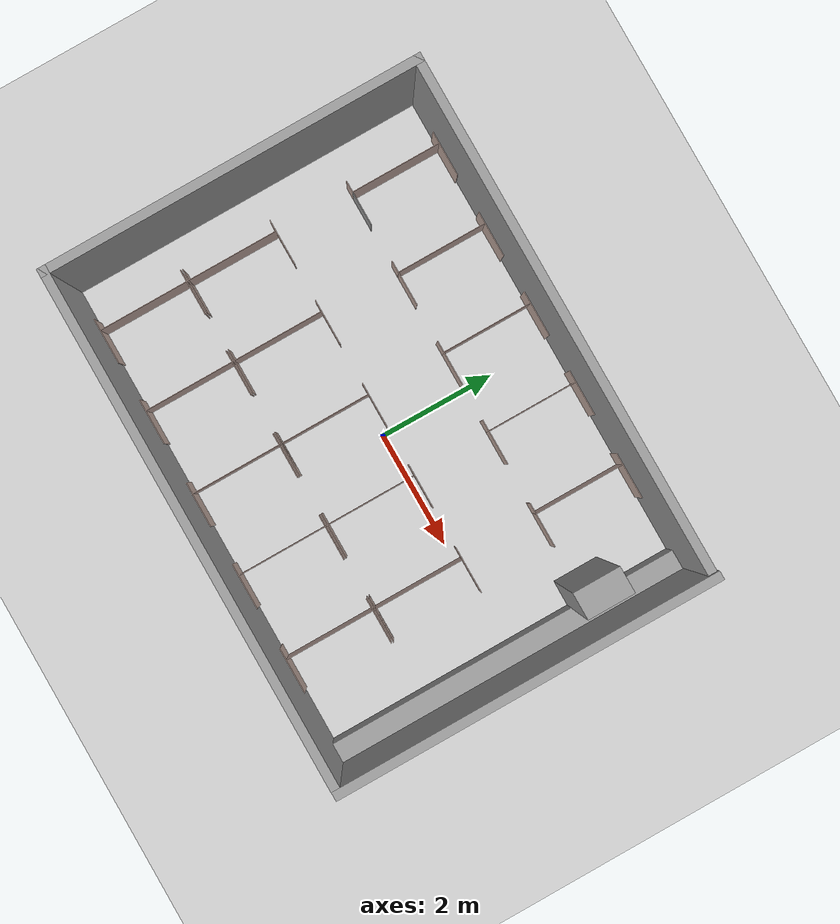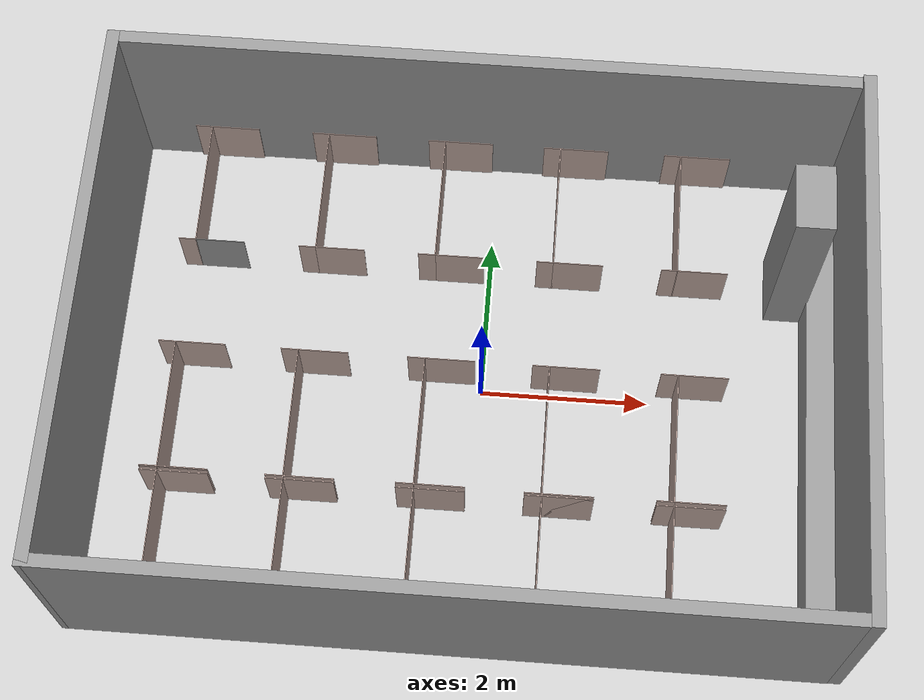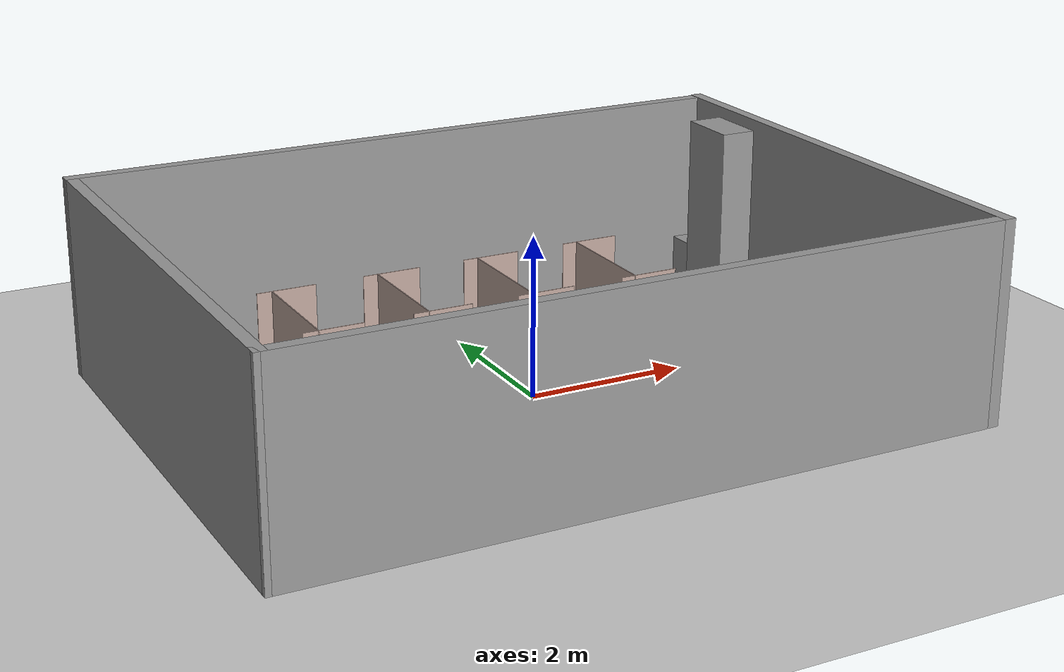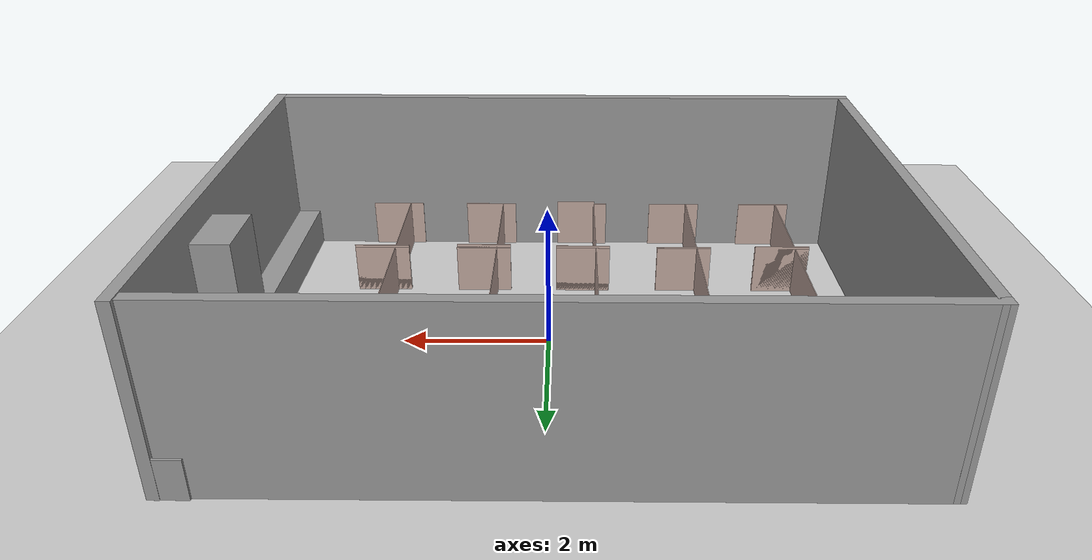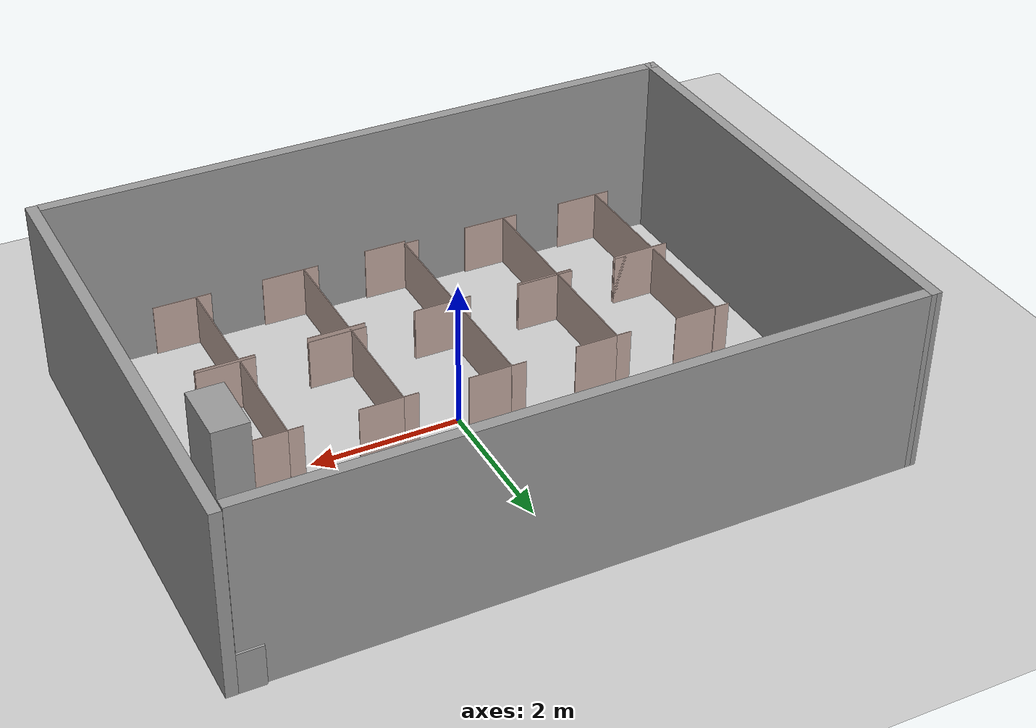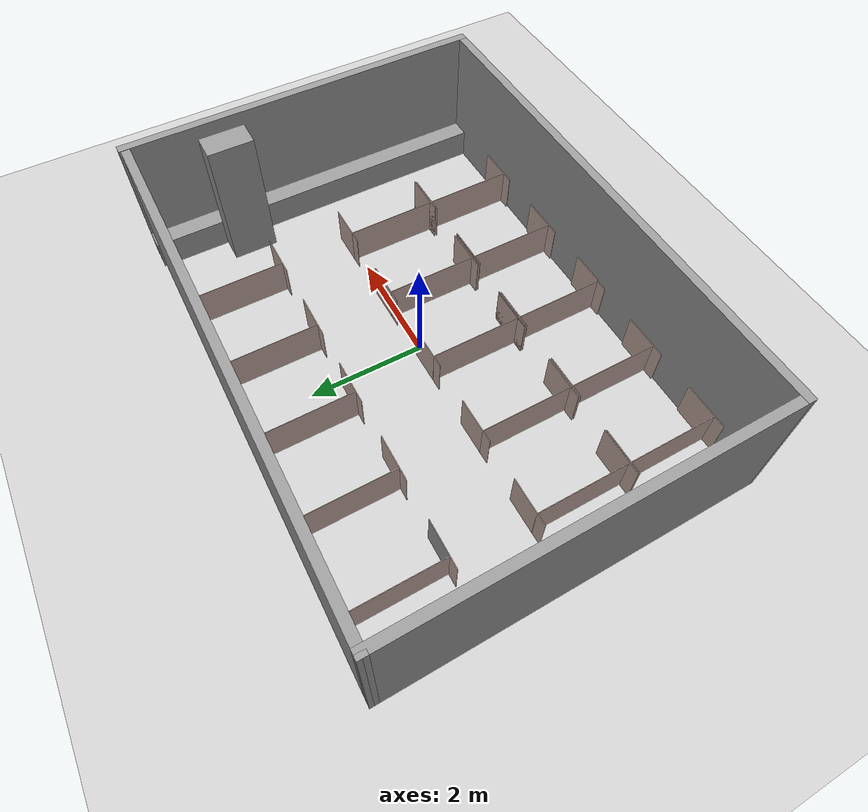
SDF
<?xml version="1.0" ?>
<sdf version="1.5">
  <world name="default">
    <!-- A global light source -->
    <include>
      <uri>model://sun</uri>
    </include>
    <!-- A ground plane -->
    <include>
      <uri>model://ground_plane</uri>
    </include>

    <include>
      <uri>model://change_class_final</uri>
    </include>
  </world>
</sdf>

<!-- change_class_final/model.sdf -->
<sdf version='1.6'>
  <model name='change_class_final'>
    <pose frame=''>-0.141303 0.00609 0 0 -0 0</pose>
    <link name='Wall_10'>
      <collision name='Wall_10_Collision'>
        <geometry>
          <box>
            <size>0.598 0.01 0.715</size>
          </box>
        </geometry>
        <pose frame=''>0 0 0.3575 0 -0 0</pose>
      </collision>
      <visual name='Wall_10_Visual'>
        <pose frame=''>0 0 0.3575 0 -0 0</pose>
        <geometry>
          <box>
            <size>0.598 0.01 0.715</size>
          </box>
        </geometry>
        <material>
          <script>
            <uri>file://media/materials/scripts/gazebo.material</uri>
            <name>Gazebo/Grey</name>
          </script>
          <ambient>0.760784 0.662745 0.627451 1</ambient>
        </material>
      </visual>
      <pose frame=''>-0.230697 1.47091 0 0 -0 0</pose>
    </link>
    <link name='Wall_12'>
      <collision name='Wall_12_Collision'>
        <geometry>
          <box>
            <size>0.598 0.01 0.715</size>
          </box>
        </geometry>
        <pose frame=''>0 0 0.3575 0 -0 0</pose>
      </collision>
      <visual name='Wall_12_Visual'>
        <pose frame=''>0 0 0.3575 0 -0 0</pose>
        <geometry>
          <box>
            <size>0.598 0.01 0.715</size>
          </box>
        </geometry>
        <material>
          <script>
            <uri>file://media/materials/scripts/gazebo.material</uri>
            <name>Gazebo/Grey</name>
          </script>
          <ambient>0.760784 0.662745 0.627451 1</ambient>
        </material>
      </visual>
      <pose frame=''>1.2063 1.47091 0 0 -0 0</pose>
    </link>
    <link name='Wall_138'>
      <collision name='Wall_138_Collision'>
        <geometry>
          <box>
            <size>0.593 0.01 0.715</size>
          </box>
        </geometry>
        <pose frame=''>0 0 0.3575 0 -0 0</pose>
      </collision>
      <visual name='Wall_138_Visual'>
        <pose frame=''>0 0 0.3575 0 -0 0</pose>
        <geometry>
          <box>
            <size>0.593 0.01 0.715</size>
          </box>
        </geometry>
        <material>
          <script>
            <uri>file://media/materials/scripts/gazebo.material</uri>
            <name>Gazebo/Grey</name>
          </script>
          <ambient>0.760784 0.662745 0.627451 1</ambient>
        </material>
      </visual>
      <pose frame=''>-3.1472 3.04491 0 0 -0 0</pose>
    </link>
    <link name='Wall_14'>
      <collision name='Wall_14_Collision'>
        <geometry>
          <box>
            <size>0.61 0.01 0.715</size>
          </box>
        </geometry>
        <pose frame=''>0 0 0.3575 0 -0 0</pose>
      </collision>
      <visual name='Wall_14_Visual'>
        <pose frame=''>0 0 0.3575 0 -0 0</pose>
        <geometry>
          <box>
            <size>0.61 0.01 0.715</size>
          </box>
        </geometry>
        <material>
          <script>
            <uri>file://media/materials/scripts/gazebo.material</uri>
            <name>Gazebo/Grey</name>
          </script>
          <ambient>0.760784 0.662745 0.627451 1</ambient>
        </material>
      </visual>
      <pose frame=''>2.7043 1.47091 0 0 -0 0</pose>
    </link>
    <link name='Wall_140'>
      <collision name='Wall_140_Collision'>
        <geometry>
          <box>
            <size>0.598 0.01 0.715</size>
          </box>
        </geometry>
        <pose frame=''>0 0 0.3575 0 -0 0</pose>
      </collision>
      <visual name='Wall_140_Visual'>
        <pose frame=''>0 0 0.3575 0 -0 0</pose>
        <geometry>
          <box>
            <size>0.598 0.01 0.715</size>
          </box>
        </geometry>
        <material>
          <script>
            <uri>file://media/materials/scripts/gazebo.material</uri>
            <name>Gazebo/Grey</name>
          </script>
          <ambient>0.760784 0.662745 0.627451 1</ambient>
        </material>
      </visual>
      <pose frame=''>-1.6817 3.04491 0 0 -0 0</pose>
    </link>
    <link name='Wall_143'>
      <collision name='Wall_143_Collision'>
        <geometry>
          <box>
            <size>0.598 0.01 0.715</size>
          </box>
        </geometry>
        <pose frame=''>0 0 0.3575 0 -0 0</pose>
      </collision>
      <visual name='Wall_143_Visual'>
        <pose frame=''>0 0 0.3575 0 -0 0</pose>
        <geometry>
          <box>
            <size>0.598 0.01 0.715</size>
          </box>
        </geometry>
        <material>
          <script>
            <uri>file://media/materials/scripts/gazebo.material</uri>
            <name>Gazebo/Grey</name>
          </script>
          <ambient>0.760784 0.662745 0.627451 1</ambient>
        </material>
      </visual>
      <pose frame=''>-0.230697 3.04491 0 0 -0 0</pose>
    </link>
    <link name='Wall_147'>
      <collision name='Wall_147_Collision'>
        <geometry>
          <box>
            <size>0.598 0.01 0.715</size>
          </box>
        </geometry>
        <pose frame=''>0 0 0.3575 0 -0 0</pose>
      </collision>
      <visual name='Wall_147_Visual'>
        <pose frame=''>0 0 0.3575 0 -0 0</pose>
        <geometry>
          <box>
            <size>0.598 0.01 0.715</size>
          </box>
        </geometry>
        <material>
          <script>
            <uri>file://media/materials/scripts/gazebo.material</uri>
            <name>Gazebo/Grey</name>
          </script>
          <ambient>0.760784 0.662745 0.627451 1</ambient>
        </material>
      </visual>
      <pose frame=''>1.2063 3.04491 0 0 -0 0</pose>
    </link>
    <link name='Wall_153'>
      <collision name='Wall_153_Collision'>
        <geometry>
          <box>
            <size>0.609517 0.01 0.715</size>
          </box>
        </geometry>
        <pose frame=''>0 0 0.3575 0 -0 0</pose>
      </collision>
      <visual name='Wall_153_Visual'>
        <pose frame=''>0 0 0.3575 0 -0 0</pose>
        <geometry>
          <box>
            <size>0.609517 0.01 0.715</size>
          </box>
        </geometry>
        <material>
          <script>
            <uri>file://media/materials/scripts/gazebo.material</uri>
            <name>Gazebo/Grey</name>
          </script>
          <ambient>0.760784 0.662745 0.627451 1</ambient>
        </material>
      </visual>
      <pose frame=''>2.7043 3.04491 0 0 -0 0</pose>
    </link>
    <link name='Wall_16'>
      <collision name='Wall_16_Collision'>
        <geometry>
          <box>
            <size>0.598 0.01 0.715</size>
          </box>
        </geometry>
        <pose frame=''>0 0 0.3575 0 -0 0</pose>
      </collision>
      <visual name='Wall_16_Visual'>
        <pose frame=''>0 0 0.3575 0 -0 0</pose>
        <geometry>
          <box>
            <size>0.598 0.01 0.715</size>
          </box>
        </geometry>
        <material>
          <script>
            <uri>file://media/materials/scripts/gazebo.material</uri>
            <name>Gazebo/Grey</name>
          </script>
          <ambient>0.760784 0.662745 0.627451 1</ambient>
        </material>
      </visual>
      <pose frame=''>-3.2047 0.11091 0 0 -0 0</pose>
    </link>
    <link name='Wall_18'>
      <collision name='Wall_18_Collision'>
        <geometry>
          <box>
            <size>0.598 0.01 0.715</size>
          </box>
        </geometry>
        <pose frame=''>0 0 0.3575 0 -0 0</pose>
      </collision>
      <visual name='Wall_18_Visual'>
        <pose frame=''>0 0 0.3575 0 -0 0</pose>
        <geometry>
          <box>
            <size>0.598 0.01 0.715</size>
          </box>
        </geometry>
        <material>
          <script>
            <uri>file://media/materials/scripts/gazebo.material</uri>
            <name>Gazebo/Grey</name>
          </script>
          <ambient>0.760784 0.662745 0.627451 1</ambient>
        </material>
      </visual>
      <pose frame=''>-1.7447 0.11091 0 0 -0 0</pose>
    </link>
    <link name='Wall_193'>
      <collision name='Wall_193_Collision'>
        <geometry>
          <box>
            <size>1.584 0.01 0.715</size>
          </box>
        </geometry>
        <pose frame=''>0 0 0.3575 0 -0 0</pose>
      </collision>
      <visual name='Wall_193_Visual'>
        <pose frame=''>0 0 0.3575 0 -0 0</pose>
        <geometry>
          <box>
            <size>1.584 0.01 0.715</size>
          </box>
        </geometry>
        <material>
          <script>
            <uri>file://media/materials/scripts/gazebo.material</uri>
            <name>Gazebo/Grey</name>
          </script>
          <ambient>0.760784 0.662745 0.627451 1</ambient>
        </material>
      </visual>
      <pose frame=''>-1.9757 2.25791 0 0 0 -1.5708</pose>
    </link>
    <link name='Wall_195'>
      <collision name='Wall_195_Collision'>
        <geometry>
          <box>
            <size>1.584 0.01 0.715</size>
          </box>
        </geometry>
        <pose frame=''>0 0 0.3575 0 -0 0</pose>
      </collision>
      <visual name='Wall_195_Visual'>
        <pose frame=''>0 0 0.3575 0 -0 0</pose>
        <geometry>
          <box>
            <size>1.584 0.01 0.715</size>
          </box>
        </geometry>
        <material>
          <script>
            <uri>file://media/materials/scripts/gazebo.material</uri>
            <name>Gazebo/Grey</name>
          </script>
          <ambient>0.760784 0.662745 0.627451 1</ambient>
        </material>
      </visual>
      <pose frame=''>-0.524697 2.25791 0 0 0 -1.5708</pose>
    </link>
    <link name='Wall_197'>
      <collision name='Wall_197_Collision'>
        <geometry>
          <box>
            <size>1.584 0.01 0.715</size>
          </box>
        </geometry>
        <pose frame=''>0 0 0.3575 0 -0 0</pose>
      </collision>
      <visual name='Wall_197_Visual'>
        <pose frame=''>0 0 0.3575 0 -0 0</pose>
        <geometry>
          <box>
            <size>1.584 0.01 0.715</size>
          </box>
        </geometry>
        <material>
          <script>
            <uri>file://media/materials/scripts/gazebo.material</uri>
            <name>Gazebo/Grey</name>
          </script>
          <ambient>0.760784 0.662745 0.627451 1</ambient>
        </material>
      </visual>
      <pose frame=''>0.912303 2.25791 0 0 0 -1.5708</pose>
    </link>
    <link name='Wall_199'>
      <collision name='Wall_199_Collision'>
        <geometry>
          <box>
            <size>1.58405 0.01 0.715</size>
          </box>
        </geometry>
        <pose frame=''>0 0 0.3575 0 -0 0</pose>
      </collision>
      <visual name='Wall_199_Visual'>
        <pose frame=''>0 0 0.3575 0 -0 0</pose>
        <geometry>
          <box>
            <size>1.58405 0.01 0.715</size>
          </box>
        </geometry>
        <material>
          <script>
            <uri>file://media/materials/scripts/gazebo.material</uri>
            <name>Gazebo/Grey</name>
          </script>
          <ambient>0.760784 0.662745 0.627451 1</ambient>
        </material>
      </visual>
      <pose frame=''>2.4043 2.25791 0 0 0 -1.5708</pose>
    </link>
    <link name='Wall_20'>
      <collision name='Wall_20_Collision'>
        <geometry>
          <box>
            <size>0.598 0.01 0.715</size>
          </box>
        </geometry>
        <pose frame=''>0 0 0.3575 0 -0 0</pose>
      </collision>
      <visual name='Wall_20_Visual'>
        <pose frame=''>0 0 0.3575 0 -0 0</pose>
        <geometry>
          <box>
            <size>0.598 0.01 0.715</size>
          </box>
        </geometry>
        <material>
          <script>
            <uri>file://media/materials/scripts/gazebo.material</uri>
            <name>Gazebo/Grey</name>
          </script>
          <ambient>0.760784 0.662745 0.627451 1</ambient>
        </material>
      </visual>
      <pose frame=''>-0.242697 0.11091 0 0 -0 0</pose>
    </link>
    <link name='Wall_203'>
      <collision name='Wall_203_Collision'>
        <geometry>
          <box>
            <size>3.194 0.01 0.715</size>
          </box>
        </geometry>
        <pose frame=''>0 0 0.3575 0 -0 0</pose>
      </collision>
      <visual name='Wall_203_Visual'>
        <pose frame=''>0 0 0.3575 0 -0 0</pose>
        <geometry>
          <box>
            <size>3.194 0.01 0.715</size>
          </box>
        </geometry>
        <material>
          <script>
            <uri>file://media/materials/scripts/gazebo.material</uri>
            <name>Gazebo/Grey</name>
          </script>
          <ambient>0.760784 0.662745 0.627451 1</ambient>
        </material>
      </visual>
      <pose frame=''>-3.4987 -1.48109 0 0 0 -1.5708</pose>
    </link>
    <link name='Wall_205'>
      <collision name='Wall_205_Collision'>
        <geometry>
          <box>
            <size>3.194 0.01 0.715</size>
          </box>
        </geometry>
        <pose frame=''>0 0 0.3575 0 -0 0</pose>
      </collision>
      <visual name='Wall_205_Visual'>
        <pose frame=''>0 0 0.3575 0 -0 0</pose>
        <geometry>
          <box>
            <size>3.194 0.01 0.715</size>
          </box>
        </geometry>
        <material>
          <script>
            <uri>file://media/materials/scripts/gazebo.material</uri>
            <name>Gazebo/Grey</name>
          </script>
          <ambient>0.760784 0.662745 0.627451 1</ambient>
        </material>
      </visual>
      <pose frame=''>-2.0387 -1.48109 0 0 0 -1.5708</pose>
    </link>
    <link name='Wall_207'>
      <collision name='Wall_207_Collision'>
        <geometry>
          <box>
            <size>3.194 0.01 0.715</size>
          </box>
        </geometry>
        <pose frame=''>0 0 0.3575 0 -0 0</pose>
      </collision>
      <visual name='Wall_207_Visual'>
        <pose frame=''>0 0 0.3575 0 -0 0</pose>
        <geometry>
          <box>
            <size>3.194 0.01 0.715</size>
          </box>
        </geometry>
        <material>
          <script>
            <uri>file://media/materials/scripts/gazebo.material</uri>
            <name>Gazebo/Grey</name>
          </script>
          <ambient>0.760784 0.662745 0.627451 1</ambient>
        </material>
      </visual>
      <pose frame=''>-0.536697 -1.48109 0 0 0 -1.5708</pose>
    </link>
    <link name='Wall_209'>
      <collision name='Wall_209_Collision'>
        <geometry>
          <box>
            <size>3.194 0.01 0.715</size>
          </box>
        </geometry>
        <pose frame=''>0 0 0.3575 0 -0 0</pose>
      </collision>
      <visual name='Wall_209_Visual'>
        <pose frame=''>0 0 0.3575 0 -0 0</pose>
        <geometry>
          <box>
            <size>3.194 0.01 0.715</size>
          </box>
        </geometry>
        <material>
          <script>
            <uri>file://media/materials/scripts/gazebo.material</uri>
            <name>Gazebo/Grey</name>
          </script>
          <ambient>0.760784 0.662745 0.627451 1</ambient>
        </material>
      </visual>
      <pose frame=''>0.941303 -1.48109 0 0 0 -1.5708</pose>
    </link>
    <link name='Wall_211'>
      <collision name='Wall_211_Collision'>
        <geometry>
          <box>
            <size>3.194 0.01 0.715</size>
          </box>
        </geometry>
        <pose frame=''>0 0 0.3575 0 -0 0</pose>
      </collision>
      <visual name='Wall_211_Visual'>
        <pose frame=''>0 0 0.3575 0 -0 0</pose>
        <geometry>
          <box>
            <size>3.194 0.01 0.715</size>
          </box>
        </geometry>
        <material>
          <script>
            <uri>file://media/materials/scripts/gazebo.material</uri>
            <name>Gazebo/Grey</name>
          </script>
          <ambient>0.760784 0.662745 0.627451 1</ambient>
        </material>
      </visual>
      <pose frame=''>2.4553 -1.48109 0 0 0 -1.5708</pose>
    </link>
    <link name='Wall_214'>
      <collision name='Wall_214_Collision'>
        <geometry>
          <box>
            <size>0.01 0.01 0.715</size>
          </box>
        </geometry>
        <pose frame=''>0 0 0.3575 0 -0 0</pose>
      </collision>
      <visual name='Wall_214_Visual'>
        <pose frame=''>0 0 0.3575 0 -0 0</pose>
        <geometry>
          <box>
            <size>0.01 0.01 0.715</size>
          </box>
        </geometry>
        <material>
          <script>
            <uri>file://media/materials/scripts/gazebo.material</uri>
            <name>Gazebo/Grey</name>
          </script>
          <ambient>0.760784 0.662745 0.627451 1</ambient>
        </material>
      </visual>
      <pose frame=''>-3.4387 1.47091 0 0 -0 0</pose>
    </link>
    <link name='Wall_216'>
      <collision name='Wall_216_Collision'>
        <geometry>
          <box>
            <size>0.01 0.01 0.715</size>
          </box>
        </geometry>
        <pose frame=''>0 0 0.3575 0 -0 0</pose>
      </collision>
      <visual name='Wall_216_Visual'>
        <pose frame=''>0 0 0.3575 0 -0 0</pose>
        <geometry>
          <box>
            <size>0.01 0.01 0.715</size>
          </box>
        </geometry>
        <material>
          <script>
            <uri>file://media/materials/scripts/gazebo.material</uri>
            <name>Gazebo/Grey</name>
          </script>
          <ambient>0.760784 0.662745 0.627451 1</ambient>
        </material>
      </visual>
      <pose frame=''>-3.4387 1.47091 0 0 -0 0</pose>
    </link>
    <link name='Wall_218'>
      <collision name='Wall_218_Collision'>
        <geometry>
          <box>
            <size>0.01 0.01 0.715</size>
          </box>
        </geometry>
        <pose frame=''>0 0 0.3575 0 -0 0</pose>
      </collision>
      <visual name='Wall_218_Visual'>
        <pose frame=''>0 0 0.3575 0 -0 0</pose>
        <geometry>
          <box>
            <size>0.01 0.01 0.715</size>
          </box>
        </geometry>
        <material>
          <script>
            <uri>file://media/materials/scripts/gazebo.material</uri>
            <name>Gazebo/Grey</name>
          </script>
          <ambient>1 1 1 1</ambient>
        </material>
      </visual>
      <pose frame=''>-3.4387 3.04491 0 0 -0 0</pose>
    </link>
    <link name='Wall_222'>
      <collision name='Wall_222_Collision'>
        <geometry>
          <box>
            <size>1.584 0.01 0.715</size>
          </box>
        </geometry>
        <pose frame=''>0 0 0.3575 0 -0 0</pose>
      </collision>
      <visual name='Wall_222_Visual'>
        <pose frame=''>0 0 0.3575 0 -0 0</pose>
        <geometry>
          <box>
            <size>1.584 0.01 0.715</size>
          </box>
        </geometry>
        <material>
          <script>
            <uri>file://media/materials/scripts/gazebo.material</uri>
            <name>Gazebo/Grey</name>
          </script>
          <ambient>0.760784 0.662745 0.627451 1</ambient>
        </material>
      </visual>
      <pose frame=''>-3.4387 2.25791 0 0 -0 1.5708</pose>
    </link>
    <link name='Wall_224'>
      <collision name='Wall_224_Collision'>
        <geometry>
          <box>
            <size>0.21 0.01 0.715</size>
          </box>
        </geometry>
        <pose frame=''>0 0 0.3575 0 -0 0</pose>
      </collision>
      <visual name='Wall_224_Visual'>
        <pose frame=''>0 0 0.3575 0 -0 0</pose>
        <geometry>
          <box>
            <size>0.21 0.01 0.715</size>
          </box>
        </geometry>
        <material>
          <script>
            <uri>file://media/materials/scripts/gazebo.material</uri>
            <name>Gazebo/Grey</name>
          </script>
          <ambient>0.760784 0.662745 0.627451 1</ambient>
        </material>
      </visual>
      <pose frame=''>-3.5387 3.04491 0 0 -0 0</pose>
    </link>
    <link name='Wall_226'>
      <collision name='Wall_226_Collision'>
        <geometry>
          <box>
            <size>0.21 0.01 0.715</size>
          </box>
        </geometry>
        <pose frame=''>0 0 0.3575 0 -0 0</pose>
      </collision>
      <visual name='Wall_226_Visual'>
        <pose frame=''>0 0 0.3575 0 -0 0</pose>
        <geometry>
          <box>
            <size>0.21 0.01 0.715</size>
          </box>
        </geometry>
        <material>
          <script>
            <uri>file://media/materials/scripts/gazebo.material</uri>
            <name>Gazebo/Grey</name>
          </script>
          <ambient>0.760784 0.662745 0.627451 1</ambient>
        </material>
      </visual>
      <pose frame=''>-3.5387 1.47091 0 0 -0 0</pose>
    </link>
    <link name='Wall_228'>
      <collision name='Wall_228_Collision'>
        <geometry>
          <box>
            <size>0.21 0.01 0.715</size>
          </box>
        </geometry>
        <pose frame=''>0 0 0.3575 0 -0 0</pose>
      </collision>
      <visual name='Wall_228_Visual'>
        <pose frame=''>0 0 0.3575 0 -0 0</pose>
        <geometry>
          <box>
            <size>0.21 0.01 0.715</size>
          </box>
        </geometry>
        <material>
          <script>
            <uri>file://media/materials/scripts/gazebo.material</uri>
            <name>Gazebo/Grey</name>
          </script>
          <ambient>0.760784 0.662745 0.627451 1</ambient>
        </material>
      </visual>
      <pose frame=''>-2.0757 3.04491 0 0 -0 0</pose>
    </link>
    <link name='Wall_230'>
      <collision name='Wall_230_Collision'>
        <geometry>
          <box>
            <size>0.21 0.01 0.715</size>
          </box>
        </geometry>
        <pose frame=''>0 0 0.3575 0 -0 0</pose>
      </collision>
      <visual name='Wall_230_Visual'>
        <pose frame=''>0 0 0.3575 0 -0 0</pose>
        <geometry>
          <box>
            <size>0.21 0.01 0.715</size>
          </box>
        </geometry>
        <material>
          <script>
            <uri>file://media/materials/scripts/gazebo.material</uri>
            <name>Gazebo/Grey</name>
          </script>
          <ambient>0.760784 0.662745 0.627451 1</ambient>
        </material>
      </visual>
      <pose frame=''>-2.0757 1.47091 0 0 -0 0</pose>
    </link>
    <link name='Wall_232'>
      <collision name='Wall_232_Collision'>
        <geometry>
          <box>
            <size>0.21 0.01 0.715</size>
          </box>
        </geometry>
        <pose frame=''>0 0 0.3575 0 -0 0</pose>
      </collision>
      <visual name='Wall_232_Visual'>
        <pose frame=''>0 0 0.3575 0 -0 0</pose>
        <geometry>
          <box>
            <size>0.21 0.01 0.715</size>
          </box>
        </geometry>
        <material>
          <script>
            <uri>file://media/materials/scripts/gazebo.material</uri>
            <name>Gazebo/Grey</name>
          </script>
          <ambient>0.760784 0.662745 0.627451 1</ambient>
        </material>
      </visual>
      <pose frame=''>-0.624697 1.47091 0 0 -0 0</pose>
    </link>
    <link name='Wall_234'>
      <collision name='Wall_234_Collision'>
        <geometry>
          <box>
            <size>0.21 0.01 0.715</size>
          </box>
        </geometry>
        <pose frame=''>0 0 0.3575 0 -0 0</pose>
      </collision>
      <visual name='Wall_234_Visual'>
        <pose frame=''>0 0 0.3575 0 -0 0</pose>
        <geometry>
          <box>
            <size>0.21 0.01 0.715</size>
          </box>
        </geometry>
        <material>
          <script>
            <uri>file://media/materials/scripts/gazebo.material</uri>
            <name>Gazebo/Grey</name>
          </script>
          <ambient>0.760784 0.662745 0.627451 1</ambient>
        </material>
      </visual>
      <pose frame=''>-0.624697 3.04491 0 0 -0 0</pose>
    </link>
    <link name='Wall_236'>
      <collision name='Wall_236_Collision'>
        <geometry>
          <box>
            <size>0.21 0.01 0.715</size>
          </box>
        </geometry>
        <pose frame=''>0 0 0.3575 0 -0 0</pose>
      </collision>
      <visual name='Wall_236_Visual'>
        <pose frame=''>0 0 0.3575 0 -0 0</pose>
        <geometry>
          <box>
            <size>0.21 0.01 0.715</size>
          </box>
        </geometry>
        <material>
          <script>
            <uri>file://media/materials/scripts/gazebo.material</uri>
            <name>Gazebo/Grey</name>
          </script>
          <ambient>0.760784 0.662745 0.627451 1</ambient>
        </material>
      </visual>
      <pose frame=''>0.812303 1.47091 0 0 -0 0</pose>
    </link>
    <link name='Wall_238'>
      <collision name='Wall_238_Collision'>
        <geometry>
          <box>
            <size>0.21 0.01 0.715</size>
          </box>
        </geometry>
        <pose frame=''>0 0 0.3575 0 -0 0</pose>
      </collision>
      <visual name='Wall_238_Visual'>
        <pose frame=''>0 0 0.3575 0 -0 0</pose>
        <geometry>
          <box>
            <size>0.21 0.01 0.715</size>
          </box>
        </geometry>
        <material>
          <script>
            <uri>file://media/materials/scripts/gazebo.material</uri>
            <name>Gazebo/Grey</name>
          </script>
          <ambient>0.760784 0.662745 0.627451 1</ambient>
        </material>
      </visual>
      <pose frame=''>0.812303 3.04491 0 0 -0 0</pose>
    </link>
    <link name='Wall_24'>
      <collision name='Wall_24_Collision'>
        <geometry>
          <box>
            <size>0.598 0.01 0.715</size>
          </box>
        </geometry>
        <pose frame=''>0 0 0.3575 0 -0 0</pose>
      </collision>
      <visual name='Wall_24_Visual'>
        <pose frame=''>0 0 0.3575 0 -0 0</pose>
        <geometry>
          <box>
            <size>0.598 0.01 0.715</size>
          </box>
        </geometry>
        <material>
          <script>
            <uri>file://media/materials/scripts/gazebo.material</uri>
            <name>Gazebo/Grey</name>
          </script>
          <ambient>0.760784 0.662745 0.627451 1</ambient>
        </material>
      </visual>
      <pose frame=''>2.7493 0.11091 0 0 -0 0</pose>
    </link>
    <link name='Wall_240'>
      <collision name='Wall_240_Collision'>
        <geometry>
          <box>
            <size>0.198 0.01 0.715</size>
          </box>
        </geometry>
        <pose frame=''>0 0 0.3575 0 -0 0</pose>
      </collision>
      <visual name='Wall_240_Visual'>
        <pose frame=''>0 0 0.3575 0 -0 0</pose>
        <geometry>
          <box>
            <size>0.198 0.01 0.715</size>
          </box>
        </geometry>
        <material>
          <script>
            <uri>file://media/materials/scripts/gazebo.material</uri>
            <name>Gazebo/Grey</name>
          </script>
          <ambient>0.760784 0.662745 0.627451 1</ambient>
        </material>
      </visual>
      <pose frame=''>2.3103 1.47091 0 0 -0 0</pose>
    </link>
    <link name='Wall_242'>
      <collision name='Wall_242_Collision'>
        <geometry>
          <box>
            <size>0.21 0.01 0.715</size>
          </box>
        </geometry>
        <pose frame=''>0 0 0.3575 0 -0 0</pose>
      </collision>
      <visual name='Wall_242_Visual'>
        <pose frame=''>0 0 0.3575 0 -0 0</pose>
        <geometry>
          <box>
            <size>0.21 0.01 0.715</size>
          </box>
        </geometry>
        <material>
          <script>
            <uri>file://media/materials/scripts/gazebo.material</uri>
            <name>Gazebo/Grey</name>
          </script>
          <ambient>0.760784 0.662745 0.627451 1</ambient>
        </material>
      </visual>
      <pose frame=''>2.3043 3.04491 0 0 -0 0</pose>
    </link>
    <link name='Wall_244'>
      <collision name='Wall_244_Collision'>
        <geometry>
          <box>
            <size>0.21 0.01 0.715</size>
          </box>
        </geometry>
        <pose frame=''>0 0 0.3575 0 -0 0</pose>
      </collision>
      <visual name='Wall_244_Visual'>
        <pose frame=''>0 0 0.3575 0 -0 0</pose>
        <geometry>
          <box>
            <size>0.21 0.01 0.715</size>
          </box>
        </geometry>
        <material>
          <script>
            <uri>file://media/materials/scripts/gazebo.material</uri>
            <name>Gazebo/Grey</name>
          </script>
          <ambient>0.760784 0.662745 0.627451 1</ambient>
        </material>
      </visual>
      <pose frame=''>-3.5987 0.11091 0 0 -0 0</pose>
    </link>
    <link name='Wall_246'>
      <collision name='Wall_246_Collision'>
        <geometry>
          <box>
            <size>0.21 0.01 0.715</size>
          </box>
        </geometry>
        <pose frame=''>0 0 0.3575 0 -0 0</pose>
      </collision>
      <visual name='Wall_246_Visual'>
        <pose frame=''>0 0 0.3575 0 -0 0</pose>
        <geometry>
          <box>
            <size>0.21 0.01 0.715</size>
          </box>
        </geometry>
        <material>
          <script>
            <uri>file://media/materials/scripts/gazebo.material</uri>
            <name>Gazebo/Grey</name>
          </script>
          <ambient>0.760784 0.662745 0.627451 1</ambient>
        </material>
      </visual>
      <pose frame=''>-3.5987 -3.07309 0 0 -0 0</pose>
    </link>
    <link name='Wall_248'>
      <collision name='Wall_248_Collision'>
        <geometry>
          <box>
            <size>0.21 0.01 0.715</size>
          </box>
        </geometry>
        <pose frame=''>0 0 0.3575 0 -0 0</pose>
      </collision>
      <visual name='Wall_248_Visual'>
        <pose frame=''>0 0 0.3575 0 -0 0</pose>
        <geometry>
          <box>
            <size>0.21 0.01 0.715</size>
          </box>
        </geometry>
        <material>
          <script>
            <uri>file://media/materials/scripts/gazebo.material</uri>
            <name>Gazebo/Grey</name>
          </script>
          <ambient>0.760784 0.662745 0.627451 1</ambient>
        </material>
      </visual>
      <pose frame=''>-2.1387 0.11091 0 0 -0 0</pose>
    </link>
    <link name='Wall_250'>
      <collision name='Wall_250_Collision'>
        <geometry>
          <box>
            <size>0.21 0.01 0.715</size>
          </box>
        </geometry>
        <pose frame=''>0 0 0.3575 0 -0 0</pose>
      </collision>
      <visual name='Wall_250_Visual'>
        <pose frame=''>0 0 0.3575 0 -0 0</pose>
        <geometry>
          <box>
            <size>0.21 0.01 0.715</size>
          </box>
        </geometry>
        <material>
          <script>
            <uri>file://media/materials/scripts/gazebo.material</uri>
            <name>Gazebo/Grey</name>
          </script>
          <ambient>0.760784 0.662745 0.627451 1</ambient>
        </material>
      </visual>
      <pose frame=''>-2.1387 -3.07309 0 0 -0 0</pose>
    </link>
    <link name='Wall_26'>
      <collision name='Wall_26_Collision'>
        <geometry>
          <box>
            <size>0.798 0.01 0.751</size>
          </box>
        </geometry>
        <pose frame=''>0 0 0.3755 0 -0 0</pose>
      </collision>
      <visual name='Wall_26_Visual'>
        <pose frame=''>0 0 0.3755 0 -0 0</pose>
        <geometry>
          <box>
            <size>0.798 0.01 0.751</size>
          </box>
        </geometry>
        <material>
          <script>
            <uri>file://media/materials/scripts/gazebo.material</uri>
            <name>Gazebo/Grey</name>
          </script>
          <ambient>0.760784 0.662745 0.627451 1</ambient>
        </material>
      </visual>
      <pose frame=''>-3.3047 -1.46909 0 0 -0 0</pose>
    </link>
    <link name='Wall_28'>
      <collision name='Wall_28_Collision'>
        <geometry>
          <box>
            <size>0.798 0.01 0.715</size>
          </box>
        </geometry>
        <pose frame=''>0 0 0.3575 0 -0 0</pose>
      </collision>
      <visual name='Wall_28_Visual'>
        <pose frame=''>0 0 0.3575 0 -0 0</pose>
        <geometry>
          <box>
            <size>0.798 0.01 0.715</size>
          </box>
        </geometry>
        <material>
          <script>
            <uri>file://media/materials/scripts/gazebo.material</uri>
            <name>Gazebo/Grey</name>
          </script>
          <ambient>0.760784 0.662745 0.627451 1</ambient>
        </material>
      </visual>
      <pose frame=''>-1.8487 -1.46909 0 0 -0 0</pose>
    </link>
    <link name='Wall_287'>
      <collision name='Wall_287_Collision'>
        <geometry>
          <box>
            <size>0.21 0.01 0.715</size>
          </box>
        </geometry>
        <pose frame=''>0 0 0.3575 0 -0 0</pose>
      </collision>
      <visual name='Wall_287_Visual'>
        <pose frame=''>0 0 0.3575 0 -0 0</pose>
        <geometry>
          <box>
            <size>0.21 0.01 0.715</size>
          </box>
        </geometry>
        <material>
          <script>
            <uri>file://media/materials/scripts/gazebo.material</uri>
            <name>Gazebo/Grey</name>
          </script>
          <ambient>0.760784 0.662745 0.627451 1</ambient>
        </material>
      </visual>
      <pose frame=''>-0.636697 0.11091 0 0 -0 0</pose>
    </link>
    <link name='Wall_289'>
      <collision name='Wall_289_Collision'>
        <geometry>
          <box>
            <size>0.21 0.01 0.715</size>
          </box>
        </geometry>
        <pose frame=''>0 0 0.3575 0 -0 0</pose>
      </collision>
      <visual name='Wall_289_Visual'>
        <pose frame=''>0 0 0.3575 0 -0 0</pose>
        <geometry>
          <box>
            <size>0.21 0.01 0.715</size>
          </box>
        </geometry>
        <material>
          <script>
            <uri>file://media/materials/scripts/gazebo.material</uri>
            <name>Gazebo/Grey</name>
          </script>
          <ambient>0.760784 0.662745 0.627451 1</ambient>
        </material>
      </visual>
      <pose frame=''>-0.636697 -3.07309 0 0 -0 0</pose>
    </link>
    <link name='Wall_291'>
      <collision name='Wall_291_Collision'>
        <geometry>
          <box>
            <size>0.21 0.01 0.715</size>
          </box>
        </geometry>
        <pose frame=''>0 0 0.3575 0 -0 0</pose>
      </collision>
      <visual name='Wall_291_Visual'>
        <pose frame=''>0 0 0.3575 0 -0 0</pose>
        <geometry>
          <box>
            <size>0.21 0.01 0.715</size>
          </box>
        </geometry>
        <material>
          <script>
            <uri>file://media/materials/scripts/gazebo.material</uri>
            <name>Gazebo/Grey</name>
          </script>
          <ambient>0.760784 0.662745 0.627451 1</ambient>
        </material>
      </visual>
      <pose frame=''>0.841303 0.11091 0 0 -0 0</pose>
    </link>
    <link name='Wall_293'>
      <collision name='Wall_293_Collision'>
        <geometry>
          <box>
            <size>0.21 0.01 0.715</size>
          </box>
        </geometry>
        <pose frame=''>0 0 0.3575 0 -0 0</pose>
      </collision>
      <visual name='Wall_293_Visual'>
        <pose frame=''>0 0 0.3575 0 -0 0</pose>
        <geometry>
          <box>
            <size>0.21 0.01 0.715</size>
          </box>
        </geometry>
        <material>
          <script>
            <uri>file://media/materials/scripts/gazebo.material</uri>
            <name>Gazebo/Grey</name>
          </script>
          <ambient>0.760784 0.662745 0.627451 1</ambient>
        </material>
      </visual>
      <pose frame=''>0.841303 -3.07309 0 0 -0 0</pose>
    </link>
    <link name='Wall_295'>
      <collision name='Wall_295_Collision'>
        <geometry>
          <box>
            <size>0.21 0.01 0.715</size>
          </box>
        </geometry>
        <pose frame=''>0 0 0.3575 0 -0 0</pose>
      </collision>
      <visual name='Wall_295_Visual'>
        <pose frame=''>0 0 0.3575 0 -0 0</pose>
        <geometry>
          <box>
            <size>0.21 0.01 0.715</size>
          </box>
        </geometry>
        <material>
          <script>
            <uri>file://media/materials/scripts/gazebo.material</uri>
            <name>Gazebo/Grey</name>
          </script>
          <ambient>0.760784 0.662745 0.627451 1</ambient>
        </material>
      </visual>
      <pose frame=''>2.3553 0.11091 0 0 -0 0</pose>
    </link>
    <link name='Wall_297'>
      <collision name='Wall_297_Collision'>
        <geometry>
          <box>
            <size>0.21 0.01 0.715</size>
          </box>
        </geometry>
        <pose frame=''>0 0 0.3575 0 -0 0</pose>
      </collision>
      <visual name='Wall_297_Visual'>
        <pose frame=''>0 0 0.3575 0 -0 0</pose>
        <geometry>
          <box>
            <size>0.21 0.01 0.715</size>
          </box>
        </geometry>
        <material>
          <script>
            <uri>file://media/materials/scripts/gazebo.material</uri>
            <name>Gazebo/Grey</name>
          </script>
          <ambient>0.760784 0.662745 0.627451 1</ambient>
        </material>
      </visual>
      <pose frame=''>2.3553 -3.07309 0 0 -0 0</pose>
    </link>
    <link name='Wall_299'>
      <collision name='Wall_299_Collision'>
        <geometry>
          <box>
            <size>6.495 0.34 0.555</size>
          </box>
        </geometry>
        <pose frame=''>0 0 0.2775 0 -0 0</pose>
      </collision>
      <visual name='Wall_299_Visual'>
        <pose frame=''>0 0 0.2775 0 -0 0</pose>
        <geometry>
          <box>
            <size>6.495 0.34 0.555</size>
          </box>
        </geometry>
        <material>
          <script>
            <uri>file://media/materials/scripts/gazebo.material</uri>
            <name>Gazebo/Grey</name>
          </script>
          <ambient>0.713726 0.713726 0.713726 1</ambient>
        </material>
      </visual>
      <pose frame=''>4.14311 0.001985 0 0 0 -1.5708</pose>
    </link>
    <link name='Wall_30'>
      <collision name='Wall_30_Collision'>
        <geometry>
          <box>
            <size>0.798 0.01 0.751</size>
          </box>
        </geometry>
        <pose frame=''>0 0 0.3755 0 -0 0</pose>
      </collision>
      <visual name='Wall_30_Visual'>
        <pose frame=''>0 0 0.3755 0 -0 0</pose>
        <geometry>
          <box>
            <size>0.798 0.01 0.751</size>
          </box>
        </geometry>
        <material>
          <script>
            <uri>file://media/materials/scripts/gazebo.material</uri>
            <name>Gazebo/Grey</name>
          </script>
          <ambient>0.760784 0.662745 0.627451 1</ambient>
        </material>
      </visual>
      <pose frame=''>-0.344697 -1.46909 0 0 -0 0</pose>
    </link>
    <link name='Wall_301'>
      <collision name='Wall_301_Collision'>
        <geometry>
          <box>
            <size>0.795 0.45 2.5</size>
          </box>
        </geometry>
        <pose frame=''>0 0 1.25 0 -0 0</pose>
      </collision>
      <visual name='Wall_301_Visual'>
        <pose frame=''>0 0 1.25 0 -0 0</pose>
        <geometry>
          <box>
            <size>0.795 0.45 2.5</size>
          </box>
        </geometry>
        <material>
          <script>
            <uri>file://media/materials/scripts/gazebo.material</uri>
            <name>Gazebo/Grey</name>
          </script>
          <ambient>1 1 1 1</ambient>
        </material>
      </visual>
      <pose frame=''>3.7593 1.62641 0 0 0 -1.5708</pose>
    </link>
    <link name='Wall_316'>
      <collision name='Wall_316_Collision'>
        <geometry>
          <box>
            <size>8.75 0.15 2.5</size>
          </box>
        </geometry>
        <pose frame=''>0 0 1.25 0 -0 0</pose>
      </collision>
      <visual name='Wall_316_Visual'>
        <pose frame=''>0 0 1.25 0 -0 0</pose>
        <geometry>
          <box>
            <size>8.75 0.15 2.5</size>
          </box>
        </geometry>
        <material>
          <script>
            <uri>file://media/materials/scripts/gazebo.material</uri>
            <name>Gazebo/Grey</name>
          </script>
          <ambient>1 1 1 1</ambient>
        </material>
      </visual>
      <pose frame=''>-0.081169 3.14344 0 0 -0 0</pose>
    </link>
    <link name='Wall_318'>
      <collision name='Wall_318_Collision'>
        <geometry>
          <box>
            <size>8.75 0.15 2.5</size>
          </box>
        </geometry>
        <pose frame=''>0 0 1.25 0 -0 0</pose>
      </collision>
      <visual name='Wall_318_Visual'>
        <pose frame=''>0 0 1.25 0 -0 0</pose>
        <geometry>
          <box>
            <size>8.75 0.15 2.5</size>
          </box>
        </geometry>
        <material>
          <script>
            <uri>file://media/materials/scripts/gazebo.material</uri>
            <name>Gazebo/Grey</name>
          </script>
          <ambient>1 1 1 1</ambient>
        </material>
      </visual>
      <pose frame=''>-0.069862 -3.17678 0 0 -0 0</pose>
    </link>
    <link name='Wall_32'>
      <collision name='Wall_32_Collision'>
        <geometry>
          <box>
            <size>0.598 0.01 0.715</size>
          </box>
        </geometry>
        <pose frame=''>0 0 0.3575 0 -0 0</pose>
      </collision>
      <visual name='Wall_32_Visual'>
        <pose frame=''>0 0 0.3575 0 -0 0</pose>
        <geometry>
          <box>
            <size>0.598 0.01 0.715</size>
          </box>
        </geometry>
        <material>
          <script>
            <uri>file://media/materials/scripts/gazebo.material</uri>
            <name>Gazebo/Grey</name>
          </script>
          <ambient>0.760784 0.662745 0.627451 1</ambient>
        </material>
      </visual>
      <pose frame=''>1.2353 0.11091 0 0 -0 0</pose>
    </link>
    <link name='Wall_322'>
      <collision name='Wall_322_Collision'>
        <geometry>
          <box>
            <size>6.47023 0.15 2.5</size>
          </box>
        </geometry>
        <pose frame=''>0 0 1.25 0 -0 0</pose>
      </collision>
      <visual name='Wall_322_Visual'>
        <pose frame=''>0 0 1.25 0 -0 0</pose>
        <geometry>
          <box>
            <size>6.47023 0.15 2.5</size>
          </box>
        </geometry>
        <material>
          <script>
            <uri>file://media/materials/scripts/gazebo.material</uri>
            <name>Gazebo/Grey</name>
          </script>
          <ambient>1 1 1 1</ambient>
        </material>
      </visual>
      <pose frame=''>-4.37552 -0.016668 0 0 0 -1.56901</pose>
    </link>
    <link name='Wall_324'>
      <collision name='Wall_324_Collision'>
        <geometry>
          <box>
            <size>6.5 0.15 2.5</size>
          </box>
        </geometry>
        <pose frame=''>0 0 1.25 0 -0 0</pose>
      </collision>
      <visual name='Wall_324_Visual'>
        <pose frame=''>0 0 1.25 0 -0 0</pose>
        <geometry>
          <box>
            <size>6.5 0.15 2.5</size>
          </box>
        </geometry>
        <material>
          <script>
            <uri>file://media/materials/scripts/gazebo.material</uri>
            <name>Gazebo/Grey</name>
          </script>
          <ambient>1 1 1 1</ambient>
        </material>
      </visual>
      <pose frame=''>4.3813 0.00191 0 0 0 -1.5708</pose>
    </link>
    <link name='Wall_36'>
      <collision name='Wall_36_Collision'>
        <geometry>
          <box>
            <size>0.799 0.01 0.751</size>
          </box>
        </geometry>
        <pose frame=''>0 0 0.3755 0 -0 0</pose>
      </collision>
      <visual name='Wall_36_Visual'>
        <pose frame=''>0 0 0.3755 0 -0 0</pose>
        <geometry>
          <box>
            <size>0.799 0.01 0.751</size>
          </box>
        </geometry>
        <material>
          <script>
            <uri>file://media/materials/scripts/gazebo.material</uri>
            <name>Gazebo/Grey</name>
          </script>
          <ambient>0.760784 0.662745 0.627451 1</ambient>
        </material>
      </visual>
      <pose frame=''>1.1353 -1.50909 0 0 -0 0</pose>
    </link>
    <link name='Wall_38'>
      <collision name='Wall_38_Collision'>
        <geometry>
          <box>
            <size>0.798 0.01 0.751</size>
          </box>
        </geometry>
        <pose frame=''>0 0 0.3755 0 -0 0</pose>
      </collision>
      <visual name='Wall_38_Visual'>
        <pose frame=''>0 0 0.3755 0 -0 0</pose>
        <geometry>
          <box>
            <size>0.798 0.01 0.751</size>
          </box>
        </geometry>
        <material>
          <script>
            <uri>file://media/materials/scripts/gazebo.material</uri>
            <name>Gazebo/Grey</name>
          </script>
          <ambient>0.760784 0.662745 0.627451 1</ambient>
        </material>
      </visual>
      <pose frame=''>2.6493 -1.46909 0 0 -0 0</pose>
    </link>
    <link name='Wall_40'>
      <collision name='Wall_40_Collision'>
        <geometry>
          <box>
            <size>0.798 0.01 0.715</size>
          </box>
        </geometry>
        <pose frame=''>0 0 0.3575 0 -0 0</pose>
      </collision>
      <visual name='Wall_40_Visual'>
        <pose frame=''>0 0 0.3575 0 -0 0</pose>
        <geometry>
          <box>
            <size>0.798 0.01 0.715</size>
          </box>
        </geometry>
        <material>
          <script>
            <uri>file://media/materials/scripts/gazebo.material</uri>
            <name>Gazebo/Grey</name>
          </script>
          <ambient>0.760784 0.662745 0.627451 1</ambient>
        </material>
      </visual>
      <pose frame=''>2.6493 -1.46909 0 0 -0 0</pose>
    </link>
    <link name='Wall_42'>
      <collision name='Wall_42_Collision'>
        <geometry>
          <box>
            <size>0.798 0.01 0.715</size>
          </box>
        </geometry>
        <pose frame=''>0 0 0.3575 0 -0 0</pose>
      </collision>
      <visual name='Wall_42_Visual'>
        <pose frame=''>0 0 0.3575 0 -0 0</pose>
        <geometry>
          <box>
            <size>0.798 0.01 0.715</size>
          </box>
        </geometry>
        <material>
          <script>
            <uri>file://media/materials/scripts/gazebo.material</uri>
            <name>Gazebo/Grey</name>
          </script>
          <ambient>0.760784 0.662745 0.627451 1</ambient>
        </material>
      </visual>
      <pose frame=''>2.6493 -1.50909 0 0 -0 0</pose>
    </link>
    <link name='Wall_44'>
      <collision name='Wall_44_Collision'>
        <geometry>
          <box>
            <size>0.799 0.01 0.751</size>
          </box>
        </geometry>
        <pose frame=''>0 0 0.3755 0 -0 0</pose>
      </collision>
      <visual name='Wall_44_Visual'>
        <pose frame=''>0 0 0.3755 0 -0 0</pose>
        <geometry>
          <box>
            <size>0.799 0.01 0.751</size>
          </box>
        </geometry>
        <material>
          <script>
            <uri>file://media/materials/scripts/gazebo.material</uri>
            <name>Gazebo/Grey</name>
          </script>
          <ambient>0.760784 0.662745 0.627451 1</ambient>
        </material>
      </visual>
      <pose frame=''>1.1353 -1.50909 0 0 -0 0</pose>
    </link>
    <link name='Wall_46'>
      <collision name='Wall_46_Collision'>
        <geometry>
          <box>
            <size>0.798 0.01 0.715</size>
          </box>
        </geometry>
        <pose frame=''>0 0 0.3575 0 -0 0</pose>
      </collision>
      <visual name='Wall_46_Visual'>
        <pose frame=''>0 0 0.3575 0 -0 0</pose>
        <geometry>
          <box>
            <size>0.798 0.01 0.715</size>
          </box>
        </geometry>
        <material>
          <script>
            <uri>file://media/materials/scripts/gazebo.material</uri>
            <name>Gazebo/Grey</name>
          </script>
          <ambient>0.760784 0.662745 0.627451 1</ambient>
        </material>
      </visual>
      <pose frame=''>1.1353 -1.50909 0 0 -0 0</pose>
    </link>
    <link name='Wall_48'>
      <collision name='Wall_48_Collision'>
        <geometry>
          <box>
            <size>0.799 0.01 0.715</size>
          </box>
        </geometry>
        <pose frame=''>0 0 0.3575 0 -0 0</pose>
      </collision>
      <visual name='Wall_48_Visual'>
        <pose frame=''>0 0 0.3575 0 -0 0</pose>
        <geometry>
          <box>
            <size>0.799 0.01 0.715</size>
          </box>
        </geometry>
        <material>
          <script>
            <uri>file://media/materials/scripts/gazebo.material</uri>
            <name>Gazebo/Grey</name>
          </script>
          <ambient>0.760784 0.662745 0.627451 1</ambient>
        </material>
      </visual>
      <pose frame=''>1.1353 -1.46909 0 0 -0 0</pose>
    </link>
    <link name='Wall_53'>
      <collision name='Wall_53_Collision'>
        <geometry>
          <box>
            <size>0.798 0.01 0.715</size>
          </box>
        </geometry>
        <pose frame=''>0 0 0.3575 0 -0 0</pose>
      </collision>
      <visual name='Wall_53_Visual'>
        <pose frame=''>0 0 0.3575 0 -0 0</pose>
        <geometry>
          <box>
            <size>0.798 0.01 0.715</size>
          </box>
        </geometry>
        <material>
          <script>
            <uri>file://media/materials/scripts/gazebo.material</uri>
            <name>Gazebo/Grey</name>
          </script>
          <ambient>0.760784 0.662745 0.627451 1</ambient>
        </material>
      </visual>
      <pose frame=''>-0.344697 -1.46909 0 0 -0 0</pose>
    </link>
    <link name='Wall_55'>
      <collision name='Wall_55_Collision'>
        <geometry>
          <box>
            <size>0.798 0.01 0.715</size>
          </box>
        </geometry>
        <pose frame=''>0 0 0.3575 0 -0 0</pose>
      </collision>
      <visual name='Wall_55_Visual'>
        <pose frame=''>0 0 0.3575 0 -0 0</pose>
        <geometry>
          <box>
            <size>0.798 0.01 0.715</size>
          </box>
        </geometry>
        <material>
          <script>
            <uri>file://media/materials/scripts/gazebo.material</uri>
            <name>Gazebo/Grey</name>
          </script>
          <ambient>0.760784 0.662745 0.627451 1</ambient>
        </material>
      </visual>
      <pose frame=''>-0.344697 -1.50909 0 0 -0 0</pose>
    </link>
    <link name='Wall_57'>
      <collision name='Wall_57_Collision'>
        <geometry>
          <box>
            <size>0.798 0.01 0.715</size>
          </box>
        </geometry>
        <pose frame=''>0 0 0.3575 0 -0 0</pose>
      </collision>
      <visual name='Wall_57_Visual'>
        <pose frame=''>0 0 0.3575 0 -0 0</pose>
        <geometry>
          <box>
            <size>0.798 0.01 0.715</size>
          </box>
        </geometry>
        <material>
          <script>
            <uri>file://media/materials/scripts/gazebo.material</uri>
            <name>Gazebo/Grey</name>
          </script>
          <ambient>0.760784 0.662745 0.627451 1</ambient>
        </material>
      </visual>
      <pose frame=''>-1.8487 -1.50909 0 0 -0 0</pose>
    </link>
    <link name='Wall_59'>
      <collision name='Wall_59_Collision'>
        <geometry>
          <box>
            <size>0.798 0.01 0.715</size>
          </box>
        </geometry>
        <pose frame=''>0 0 0.3575 0 -0 0</pose>
      </collision>
      <visual name='Wall_59_Visual'>
        <pose frame=''>0 0 0.3575 0 -0 0</pose>
        <geometry>
          <box>
            <size>0.798 0.01 0.715</size>
          </box>
        </geometry>
        <material>
          <script>
            <uri>file://media/materials/scripts/gazebo.material</uri>
            <name>Gazebo/Grey</name>
          </script>
          <ambient>0.760784 0.662745 0.627451 1</ambient>
        </material>
      </visual>
      <pose frame=''>-3.3047 -1.46909 0 0 -0 0</pose>
    </link>
    <link name='Wall_6'>
      <collision name='Wall_6_Collision'>
        <geometry>
          <box>
            <size>0.598 0.01 0.715</size>
          </box>
        </geometry>
        <pose frame=''>0 0 0.3575 0 -0 0</pose>
      </collision>
      <visual name='Wall_6_Visual'>
        <pose frame=''>0 0 0.3575 0 -0 0</pose>
        <geometry>
          <box>
            <size>0.598 0.01 0.715</size>
          </box>
        </geometry>
        <material>
          <script>
            <uri>file://media/materials/scripts/gazebo.material</uri>
            <name>Gazebo/Grey</name>
          </script>
          <ambient>0.494118 0.494118 0.494118 1</ambient>
        </material>
      </visual>
      <pose frame=''>-3.1447 1.47091 0 0 -0 0</pose>
    </link>
    <link name='Wall_61'>
      <collision name='Wall_61_Collision'>
        <geometry>
          <box>
            <size>0.798 0.01 0.715</size>
          </box>
        </geometry>
        <pose frame=''>0 0 0.3575 0 -0 0</pose>
      </collision>
      <visual name='Wall_61_Visual'>
        <pose frame=''>0 0 0.3575 0 -0 0</pose>
        <geometry>
          <box>
            <size>0.798 0.01 0.715</size>
          </box>
        </geometry>
        <material>
          <script>
            <uri>file://media/materials/scripts/gazebo.material</uri>
            <name>Gazebo/Grey</name>
          </script>
          <ambient>0.760784 0.662745 0.627451 1</ambient>
        </material>
      </visual>
      <pose frame=''>-3.3047 -1.50909 0 0 -0 0</pose>
    </link>
    <link name='Wall_65'>
      <collision name='Wall_65_Collision'>
        <geometry>
          <box>
            <size>0.598 0.01 0.715</size>
          </box>
        </geometry>
        <pose frame=''>0 0 0.3575 0 -0 0</pose>
      </collision>
      <visual name='Wall_65_Visual'>
        <pose frame=''>0 0 0.3575 0 -0 0</pose>
        <geometry>
          <box>
            <size>0.598 0.01 0.715</size>
          </box>
        </geometry>
        <material>
          <script>
            <uri>file://media/materials/scripts/gazebo.material</uri>
            <name>Gazebo/Grey</name>
          </script>
          <ambient>0.760784 0.662745 0.627451 1</ambient>
        </material>
      </visual>
      <pose frame=''>-3.2047 -3.07309 0 0 -0 0</pose>
    </link>
    <link name='Wall_67'>
      <collision name='Wall_67_Collision'>
        <geometry>
          <box>
            <size>0.598 0.01 0.715</size>
          </box>
        </geometry>
        <pose frame=''>0 0 0.3575 0 -0 0</pose>
      </collision>
      <visual name='Wall_67_Visual'>
        <pose frame=''>0 0 0.3575 0 -0 0</pose>
        <geometry>
          <box>
            <size>0.598 0.01 0.715</size>
          </box>
        </geometry>
        <material>
          <script>
            <uri>file://media/materials/scripts/gazebo.material</uri>
            <name>Gazebo/Grey</name>
          </script>
          <ambient>0.760784 0.662745 0.627451 1</ambient>
        </material>
      </visual>
      <pose frame=''>-1.7447 -3.07309 0 0 -0 0</pose>
    </link>
    <link name='Wall_69'>
      <collision name='Wall_69_Collision'>
        <geometry>
          <box>
            <size>0.596 0.01 0.751</size>
          </box>
        </geometry>
        <pose frame=''>0 0 0.3755 0 -0 0</pose>
      </collision>
      <visual name='Wall_69_Visual'>
        <pose frame=''>0 0 0.3755 0 -0 0</pose>
        <geometry>
          <box>
            <size>0.596 0.01 0.751</size>
          </box>
        </geometry>
        <material>
          <script>
            <uri>file://media/materials/scripts/gazebo.material</uri>
            <name>Gazebo/Grey</name>
          </script>
          <ambient>0.760784 0.662745 0.627451 1</ambient>
        </material>
      </visual>
      <pose frame=''>-0.243697 -3.07309 0 0 -0 0</pose>
    </link>
    <link name='Wall_72'>
      <collision name='Wall_72_Collision'>
        <geometry>
          <box>
            <size>0.598 0.01 0.715</size>
          </box>
        </geometry>
        <pose frame=''>0 0 0.3575 0 -0 0</pose>
      </collision>
      <visual name='Wall_72_Visual'>
        <pose frame=''>0 0 0.3575 0 -0 0</pose>
        <geometry>
          <box>
            <size>0.598 0.01 0.715</size>
          </box>
        </geometry>
        <material>
          <script>
            <uri>file://media/materials/scripts/gazebo.material</uri>
            <name>Gazebo/Grey</name>
          </script>
          <ambient>0.760784 0.662745 0.627451 1</ambient>
        </material>
      </visual>
      <pose frame=''>1.2353 -3.07309 0 0 -0 0</pose>
    </link>
    <link name='Wall_74'>
      <collision name='Wall_74_Collision'>
        <geometry>
          <box>
            <size>0.598 0.01 0.715</size>
          </box>
        </geometry>
        <pose frame=''>0 0 0.3575 0 -0 0</pose>
      </collision>
      <visual name='Wall_74_Visual'>
        <pose frame=''>0 0 0.3575 0 -0 0</pose>
        <geometry>
          <box>
            <size>0.598 0.01 0.715</size>
          </box>
        </geometry>
        <material>
          <script>
            <uri>file://media/materials/scripts/gazebo.material</uri>
            <name>Gazebo/Grey</name>
          </script>
          <ambient>0.760784 0.662745 0.627451 1</ambient>
        </material>
      </visual>
      <pose frame=''>2.7493 -3.07309 0 0 -0 0</pose>
    </link>
    <link name='Wall_8'>
      <collision name='Wall_8_Collision'>
        <geometry>
          <box>
            <size>0.598 0.01 0.715</size>
          </box>
        </geometry>
        <pose frame=''>0 0 0.3575 0 -0 0</pose>
      </collision>
      <visual name='Wall_8_Visual'>
        <pose frame=''>0 0 0.3575 0 -0 0</pose>
        <geometry>
          <box>
            <size>0.598 0.01 0.715</size>
          </box>
        </geometry>
        <material>
          <script>
            <uri>file://media/materials/scripts/gazebo.material</uri>
            <name>Gazebo/Grey</name>
          </script>
          <ambient>0.760784 0.662745 0.627451 1</ambient>
        </material>
      </visual>
      <pose frame=''>-1.6817 1.47091 0 0 -0 0</pose>
    </link>
    <static>1</static>
  </model>
</sdf>
